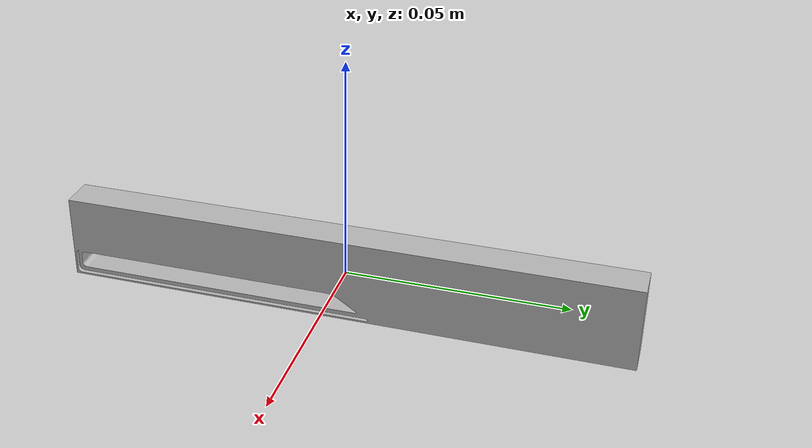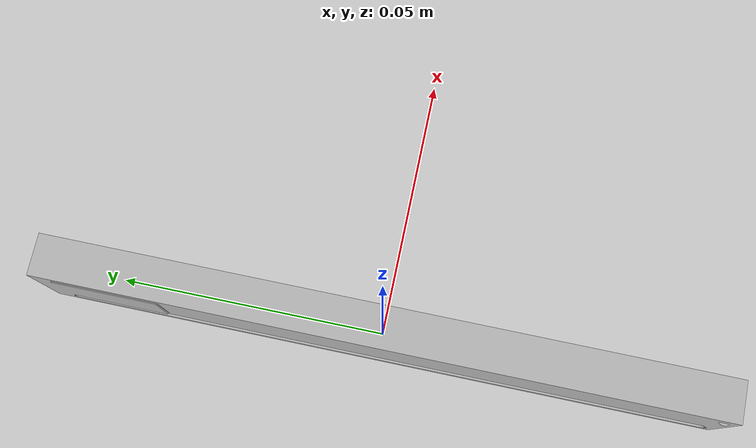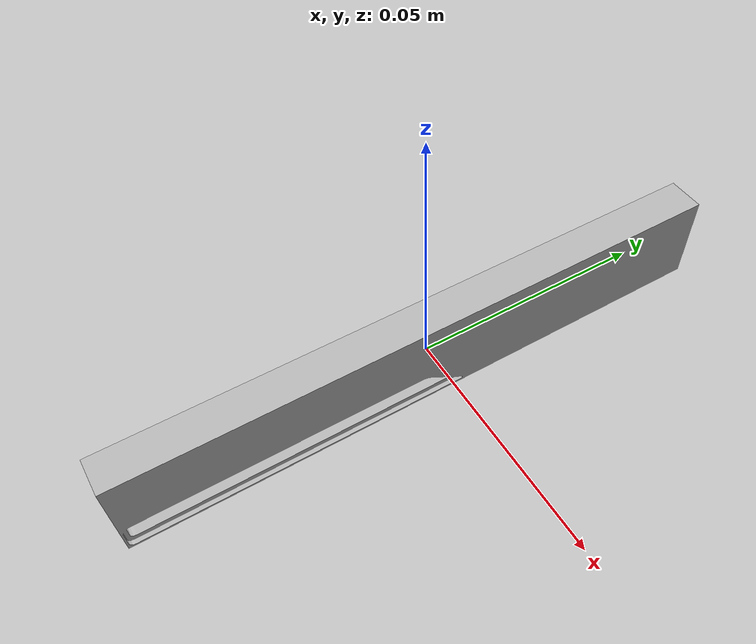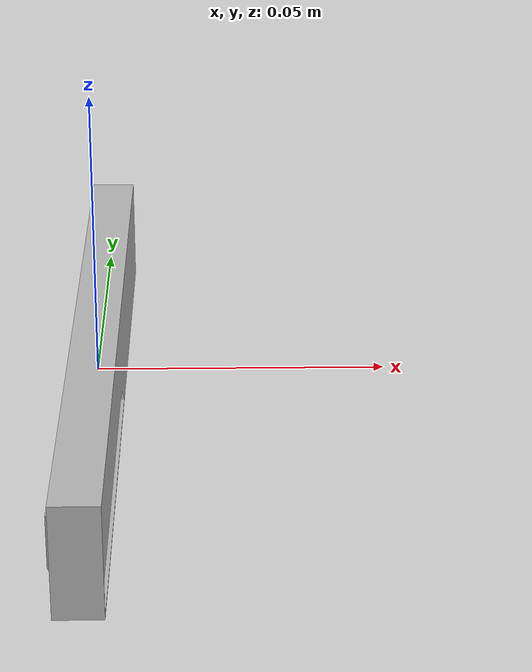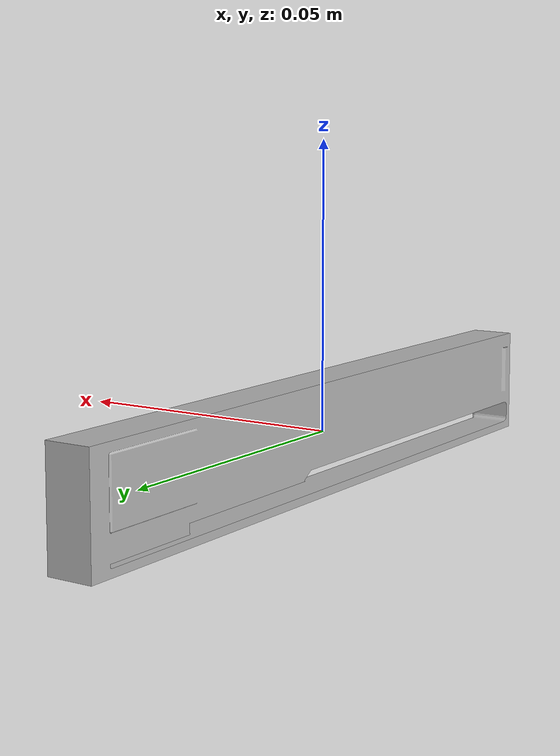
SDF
<?xml version='1.0'?>
<sdf version='1.7'>
  <model name='realsense_custom'>
    <link name='link'>
      <inertial>
        <mass>0.2</mass>
        <inertia>
          <ixx>0.00014395</ixx>
          <ixy>0</ixy>
          <ixz>0</ixz>
          <iyy>3.84e-06</iyy>
          <iyz>0</iyz>
          <izz>0.00014136</izz>
        </inertia>
        <pose>0 0 0 0 -0 0</pose>
      </inertial>
      <sensor name='camera' type='depth'>
        <pose>0.001 -0.045 0.003 0 -0 0</pose>
        <update_rate>60</update_rate>
        <camera>
          <horizontal_fov>0.976899</horizontal_fov>
          <image>
            <width>480</width>
            <height>360</height>
            <format>R8G8B8</format>
          </image>
          <clip>
            <near>0.5</near>
            <far>10</far>
          </clip>
        </camera>
      </sensor>
      <self_collide>0</self_collide>
      <enable_wind>0</enable_wind>
      <kinematic>0</kinematic>
      <pose>0 0 0 0 -0 0</pose>
      <visual name='visual'>
        <geometry>
          <mesh>
            <uri>model://intel_realsense_r200/meshes/realsense_r200.dae</uri>
          </mesh>
        </geometry>
        <material>
          <shader type='pixel'/>
        </material>
        <pose>0 0 0 0 -0 0</pose>
        <transparency>0</transparency>
        <cast_shadows>1</cast_shadows>
      </visual>
      <collision name='collision'>
        <laser_retro>0</laser_retro>
        <max_contacts>10</max_contacts>
        <pose>0 0 0 0 -0 0</pose>
        <geometry>
          <box>
            <size>0.008 0.13 0.02</size>
          </box>
        </geometry>
        <surface>
          <friction>
            <ode>
              <mu>0.4</mu>
              <mu2>0.4</mu2>
              <fdir1>0 0 0</fdir1>
              <slip1>0</slip1>
              <slip2>0</slip2>
            </ode>
            <torsional>
              <coefficient>1</coefficient>
              <patch_radius>0</patch_radius>
              <surface_radius>0</surface_radius>
              <use_patch_radius>1</use_patch_radius>
              <ode>
                <slip>0</slip>
              </ode>
            </torsional>
          </friction>
          <bounce>
            <restitution_coefficient>0</restitution_coefficient>
            <threshold>1e+06</threshold>
          </bounce>
          <contact>
            <collide_without_contact>0</collide_without_contact>
            <collide_without_contact_bitmask>1</collide_without_contact_bitmask>
            <collide_bitmask>1</collide_bitmask>
            <ode>
              <soft_cfm>0</soft_cfm>
              <soft_erp>0.2</soft_erp>
              <kp>1e+13</kp>
              <kd>1</kd>
              <max_vel>0.1</max_vel>
              <min_depth>0.001</min_depth>
            </ode>
            <bullet>
              <split_impulse>1</split_impulse>
              <split_impulse_penetration_threshold>-0.01</split_impulse_penetration_threshold>
              <soft_cfm>0</soft_cfm>
              <soft_erp>0.2</soft_erp>
              <kp>1e+13</kp>
              <kd>1</kd>
            </bullet>
          </contact>
        </surface>
      </collision>
    </link>
    <static>0</static>
    <allow_auto_disable>1</allow_auto_disable>
    <plugin name='realsense_cam' filename='libgazebo_ros_openni_kinect.so'>
      <baseline>0.2</baseline>
      <alwaysOn>1</alwaysOn>
      <updateRate>0.0</updateRate>
      <cameraName>camera_ir</cameraName>
      <imageTopicName>/camera/color/image_raw</imageTopicName>
      <cameraInfoTopicName>/camera/color/camera_info</cameraInfoTopicName>
      <depthImageTopicName>/camera/depth/image_raw</depthImageTopicName>
      <depthImageCameraInfoTopicName>/camera/depth/camera_info</depthImageCameraInfoTopicName>
      <pointCloudTopicName>/camera/depth/points</pointCloudTopicName>
      <frameName>camera_link</frameName>
      <pointCloudCutoff>0.5</pointCloudCutoff>
      <pointCloudCutoffMax>3.0</pointCloudCutoffMax>
      <distortionK1>0</distortionK1>
      <distortionK2>0</distortionK2>
      <distortionK3>0</distortionK3>
      <distortionT1>0</distortionT1>
      <distortionT2>0</distortionT2>
      <CxPrime>0</CxPrime>
      <Cx>0</Cx>
      <Cy>0</Cy>
      <focalLength>0</focalLength>
      <hackBaseline>0</hackBaseline>
    </plugin>
  </model>
</sdf>
